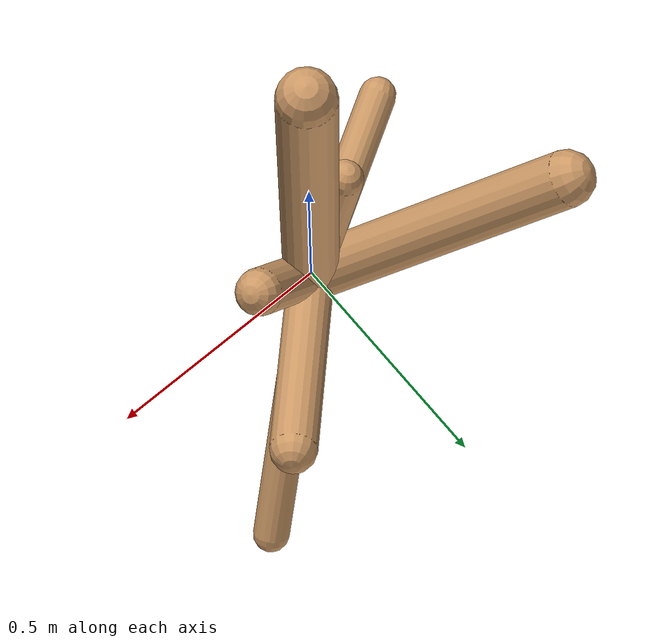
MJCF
<!--
                    joint_number: 6
                    -->
                    <mujoco model="randomrobot">
                        <compiler angle="degree" coordinate="global" inertiafromgeom="true"/>
                        <default>
                        <joint armature="0.01" damping=".1" limited="true"/>
                        <geom conaffinity="0" condim="3" contype="1" density="1000" friction="0.8 .1 .1" rgba="0.8 0.6 .4 1"/>
                        </default>
                        <option integrator="RK4" timestep="0.002"/>
                        <worldbody>
                    <body name='torso' pos='0.00 0.00 0.60'><geom fromto='0 0 0 0.00 0.00 1.00' name='torso_geom' size='0.06' type='capsule'/><inertial mass='0.3'/><body name='L0_D1' pos='0.00 0.00 0.83'><joint axis='0 0 1' name='L0_D1_joint' pos='0 0 0' range='50.86 165.03' type='hinge'/><geom fromto='0 0 0 -0.36 -0.21 0.03' name='L0_D1_geom' size='0.04' type='capsule'/><inertial mass='0.3'/><body name='L1_D0' pos='-0.34 -0.20 0.03'><joint axis='1 0 0' name='L1_D0_joint' pos='0 0 0' range='7.38 92.17' type='hinge'/><geom fromto='0 0 0 0.16 0.03 0.25' name='L1_D0_geom' size='0.05' type='capsule'/><inertial mass='0.3'/></body><body name='L2_D0' pos='-0.15 -0.08 0.01'><joint axis='1 0 0' name='L2_D0_joint' pos='0 0 0' range='10.91 14.38' type='hinge'/><geom fromto='0 0 0 0.36 0.29 -0.44' name='L2_D0_geom' size='0.04' type='capsule'/><inertial mass='0.3'/></body><body name='L3_D0' pos='-0.23 -0.13 0.02'><joint axis='1 0 0' name='L3_D0_joint' pos='0 0 0' range='13.97 151.30' type='hinge'/><geom fromto='0 0 0 0.31 0.32 0.20' name='L3_D0_geom' size='0.05' type='capsule'/><inertial mass='0.3'/></body></body><body name='L4_D1' pos='0.00 0.00 0.18'><joint axis='1 0 0' name='L4_D1_joint' pos='0 0 0' range='8.79 162.68' type='hinge'/><geom fromto='0 0 0 -0.43 0.29 0.43' name='L4_D1_geom' size='0.06' type='capsule'/><inertial mass='0.3'/><body name='L5_D0' pos='-0.09 0.06 0.09'><joint axis='0 1 0' name='L5_D0_joint' pos='0 0 0' range='0.07 140.25' type='hinge'/><geom fromto='0 0 0 -0.10 -0.01 0.38' name='L5_D0_geom' size='0.04' type='capsule'/><inertial mass='0.3'/></body></body></body>
                        </worldbody>
                    </mujoco>
